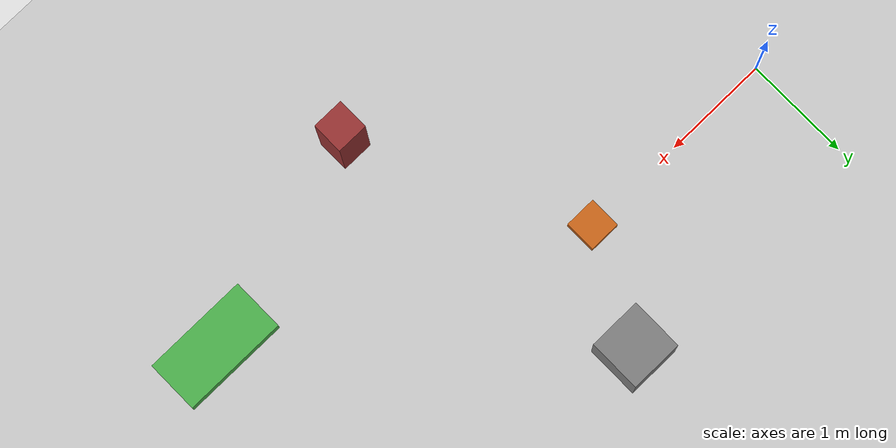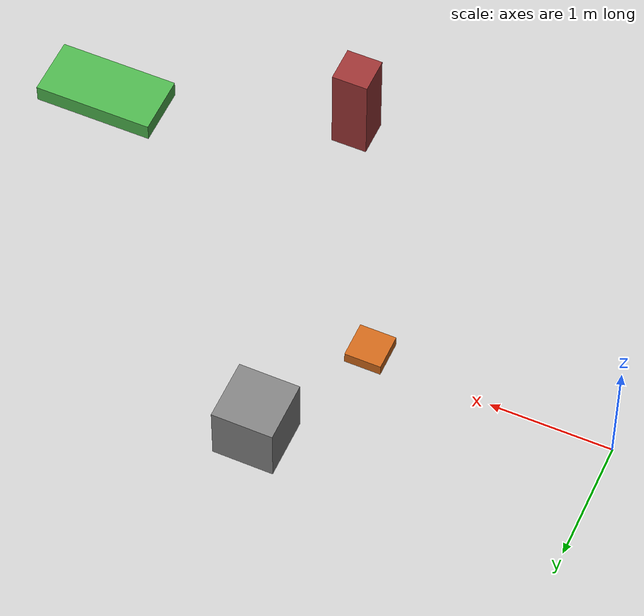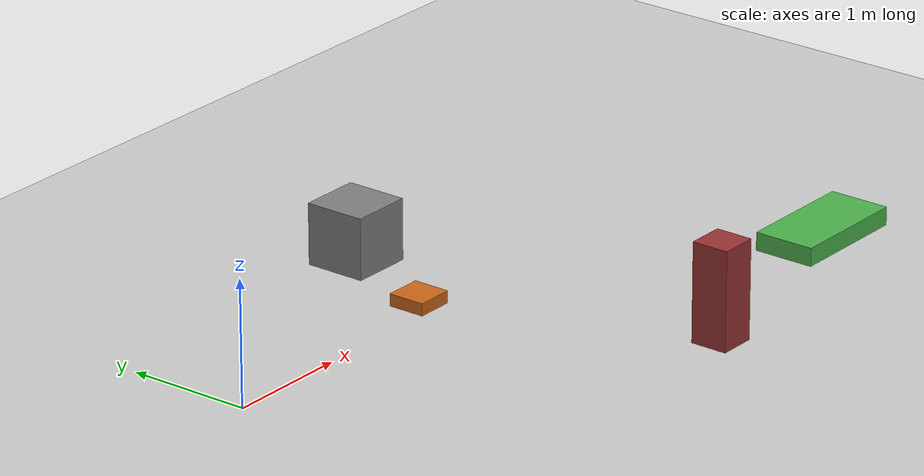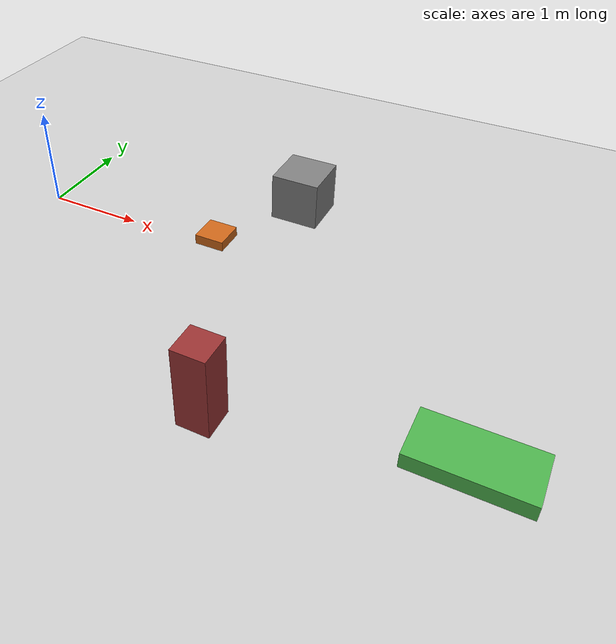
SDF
<?xml version="1.0"?>
<sdf version="1.6">
  <world name="a2_jt128_perception">
    <!-- Light -->
    <include>
      <uri>model://sun</uri>
    </include>

    <!-- Ground plane -->
    <include>
      <uri>model://ground_plane</uri>
    </include>

    <!-- ====== Obstacles for perception testing ====== -->

    <!-- Low obstacle at ~2m ahead -->
    <model name="low_obstacle">
      <pose>2.0 0.0 0.15 0 0 0</pose>
      <static>true</static>
      <link name="link">
        <collision name="collision">
          <geometry>
            <box>
              <size>0.30 0.30 0.10</size>
            </box>
          </geometry>
        </collision>
        <visual name="visual">
          <geometry>
            <box>
              <size>0.30 0.30 0.10</size>
            </box>
          </geometry>
          <material>
            <ambient>0.8 0.4 0.1 1</ambient>
            <diffuse>0.8 0.4 0.1 1</diffuse>
          </material>
        </visual>
      </link>
    </model>

    <!-- Box to the front-left -->
    <model name="box_left">
      <pose>2.5 1.0 0.25 0 0 0</pose>
      <static>true</static>
      <link name="link">
        <collision name="collision">
          <geometry>
            <box>
              <size>0.50 0.50 0.50</size>
            </box>
          </geometry>
        </collision>
        <visual name="visual">
          <geometry>
            <box>
              <size>0.50 0.50 0.50</size>
            </box>
          </geometry>
          <material>
            <ambient>0.5 0.5 0.5 1</ambient>
            <diffuse>0.5 0.5 0.5 1</diffuse>
          </material>
        </visual>
      </link>
    </model>

    <!-- Low step box for traversability height variation -->
    <model name="step_box">
      <pose>5.0 -1.5 0.08 0 0 0</pose>
      <static>true</static>
      <link name="link">
        <collision name="collision">
          <geometry>
            <box>
              <size>1.0 0.5 0.15</size>
            </box>
          </geometry>
        </collision>
        <visual name="visual">
          <geometry>
            <box>
              <size>1.0 0.5 0.15</size>
            </box>
          </geometry>
          <material>
            <ambient>0.3 0.7 0.3 1</ambient>
            <diffuse>0.3 0.7 0.3 1</diffuse>
          </material>
        </visual>
      </link>
    </model>

    <!-- Tall obstacle to the right -->
    <model name="tall_box_right">
      <pose>3.0 -2.0 0.40 0 0 0</pose>
      <static>true</static>
      <link name="link">
        <collision name="collision">
          <geometry>
            <box>
              <size>0.30 0.30 0.80</size>
            </box>
          </geometry>
        </collision>
        <visual name="visual">
          <geometry>
            <box>
              <size>0.30 0.30 0.80</size>
            </box>
          </geometry>
          <material>
            <ambient>0.6 0.2 0.2 1</ambient>
            <diffuse>0.6 0.2 0.2 1</diffuse>
          </material>
        </visual>
      </link>
    </model>

  </world>
</sdf>
